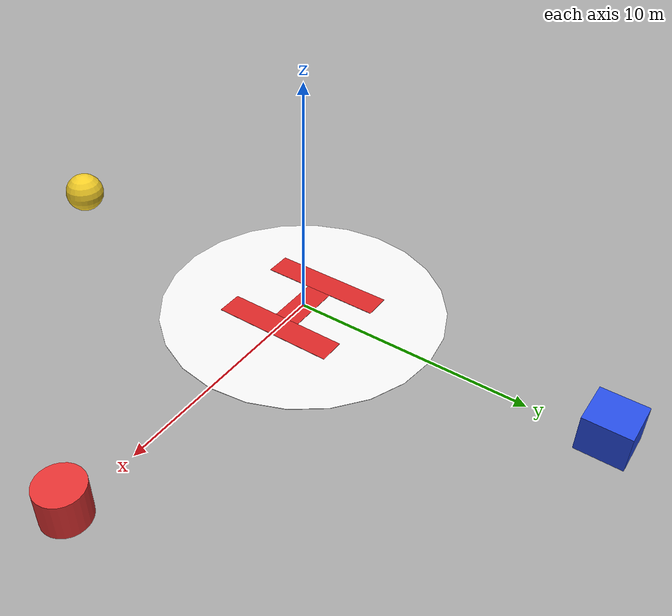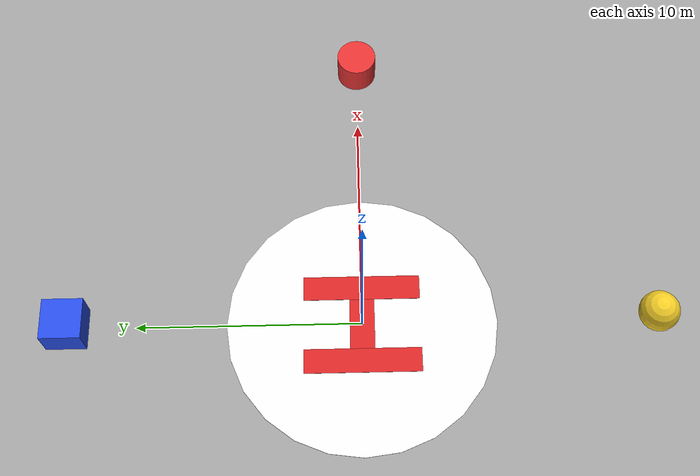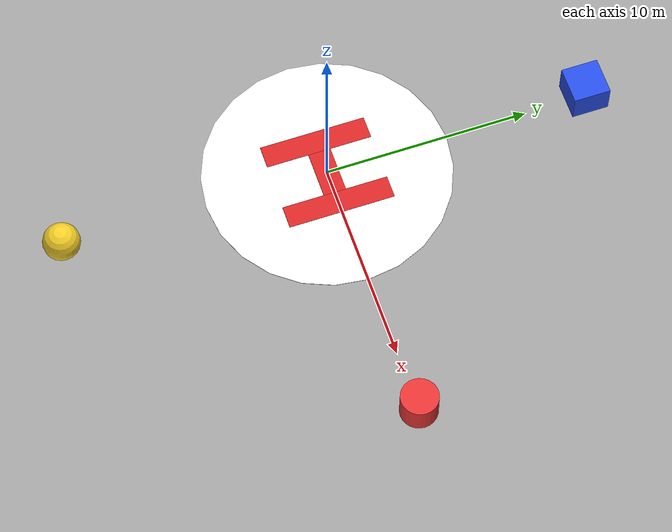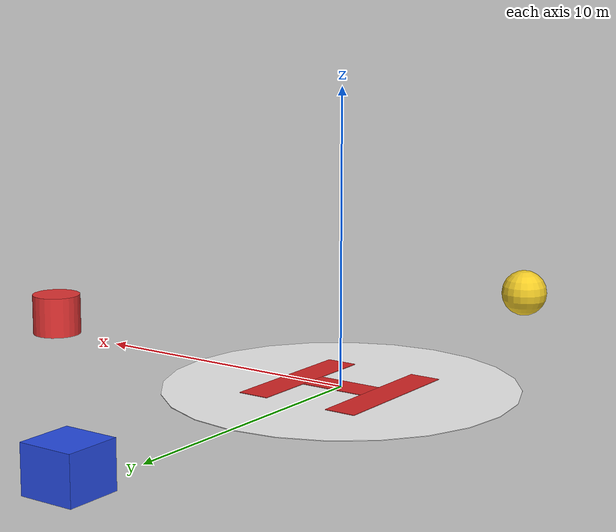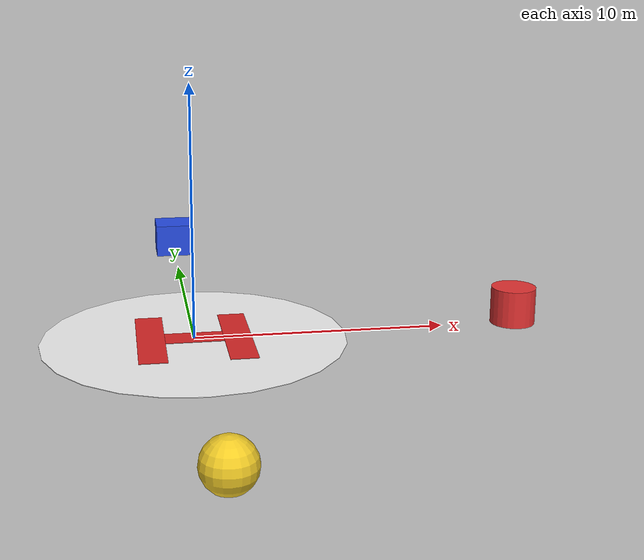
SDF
<?xml version="1.0" ?>
<sdf version="1.9">
  <model name="helipad">
    <static>true</static>

    <!-- White pad. Sits just above the ground plane so it does not z-fight with it. -->
    <link name="pad">
      <pose>0 0 0.01 0 0 0</pose>
      <visual name="pad_visual">
        <geometry>
          <cylinder>
            <radius>6.0</radius>
            <length>0.02</length>
          </cylinder>
        </geometry>
        <material>
          <ambient>0.9 0.9 0.9 1</ambient>
          <diffuse>0.95 0.95 0.95 1</diffuse>
          <specular>0.1 0.1 0.1 1</specular>
        </material>
      </visual>
      <collision name="pad_collision">
        <geometry>
          <cylinder>
            <radius>6.0</radius>
            <length>0.02</length>
          </cylinder>
        </geometry>
      </collision>
    </link>

    <!-- Red H, drawn as two bars and a crossbar so no texture file is needed. -->
    <link name="h_left">
      <pose>-1.7 0 0.025 0 0 0</pose>
      <visual name="h_left_visual">
        <geometry>
          <box><size>1.1 5.2 0.03</size></box>
        </geometry>
        <material>
          <ambient>0.7 0.1 0.1 1</ambient>
          <diffuse>0.85 0.15 0.15 1</diffuse>
        </material>
      </visual>
    </link>

    <link name="h_right">
      <pose>1.7 0 0.025 0 0 0</pose>
      <visual name="h_right_visual">
        <geometry>
          <box><size>1.1 5.2 0.03</size></box>
        </geometry>
        <material>
          <ambient>0.7 0.1 0.1 1</ambient>
          <diffuse>0.85 0.15 0.15 1</diffuse>
        </material>
      </visual>
    </link>

    <link name="h_bar">
      <pose>0 0 0.025 0 0 0</pose>
      <visual name="h_bar_visual">
        <geometry>
          <box><size>2.3 1.1 0.03</size></box>
        </geometry>
        <material>
          <ambient>0.7 0.1 0.1 1</ambient>
          <diffuse>0.85 0.15 0.15 1</diffuse>
        </material>
      </visual>
    </link>

    <!-- Three coloured markers, 13 m out on different bearings. They give the camera
         something to tell apart, and something for a detection tool to aim at later. -->
    <link name="marker_north">
      <pose>13 0 0.75 0 0 0</pose>
      <visual name="marker_north_visual">
        <geometry>
          <cylinder>
            <radius>0.9</radius>
            <length>1.5</length>
          </cylinder>
        </geometry>
        <material>
          <ambient>0.8 0.15 0.15 1</ambient>
          <diffuse>0.9 0.2 0.2 1</diffuse>
        </material>
      </visual>
      <collision name="marker_north_collision">
        <geometry>
          <cylinder>
            <radius>0.9</radius>
            <length>1.5</length>
          </cylinder>
        </geometry>
      </collision>
    </link>

    <link name="marker_east">
      <pose>0 13 0.75 0 0 0</pose>
      <visual name="marker_east_visual">
        <geometry>
          <box><size>1.8 1.8 1.5</size></box>
        </geometry>
        <material>
          <ambient>0.1 0.2 0.7 1</ambient>
          <diffuse>0.15 0.3 0.9 1</diffuse>
        </material>
      </visual>
      <collision name="marker_east_collision">
        <geometry>
          <box><size>1.8 1.8 1.5</size></box>
        </geometry>
      </collision>
    </link>

    <link name="marker_west">
      <pose>0 -13 0.9 0 0 0</pose>
      <visual name="marker_west_visual">
        <geometry>
          <sphere><radius>0.9</radius></sphere>
        </geometry>
        <material>
          <ambient>0.8 0.65 0.1 1</ambient>
          <diffuse>0.95 0.8 0.15 1</diffuse>
        </material>
      </visual>
      <collision name="marker_west_collision">
        <geometry>
          <sphere><radius>0.9</radius></sphere>
        </geometry>
      </collision>
    </link>

  </model>
</sdf>
